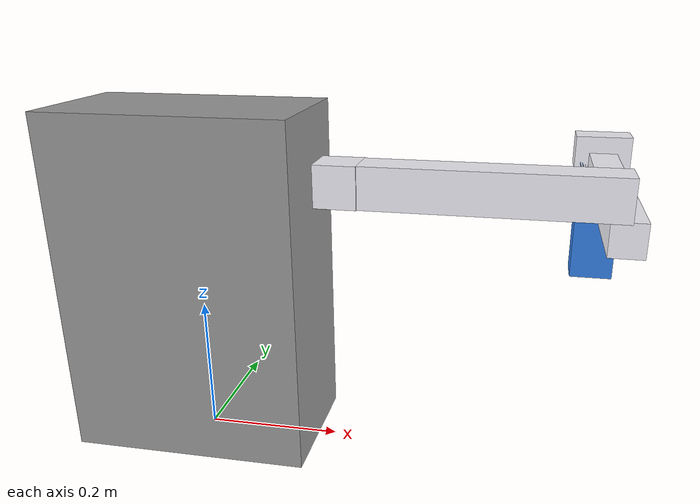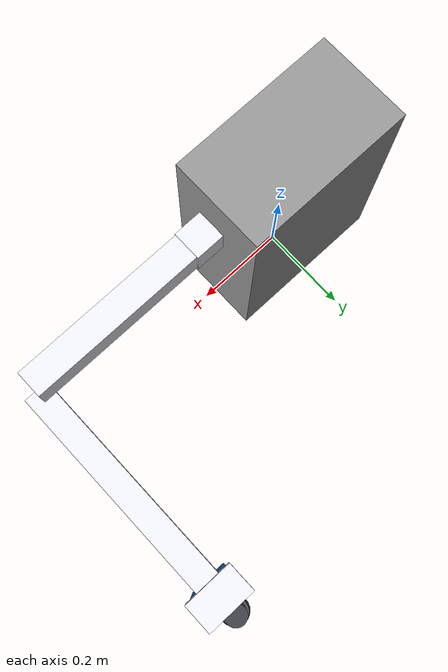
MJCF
<mujoco model="single_side_arm_mocap">
    <compiler angle="radian" autolimits="true" />

    <option timestep="0.002" integrator="RK4" />

    <default>
        <joint damping="0.5" armature="0.1" />
        <geom contype="1" conaffinity="1" friction="1 0.5 0.005" />
    </default>

    <asset>
        <material name="white" rgba="0.95 0.95 0.98 1" />
        <material name="gray" rgba="0.6 0.6 0.6 1" />
        <material name="dark" rgba="0.25 0.25 0.28 1" />
        <material name="blue" rgba="0.2 0.5 0.9 1" />
        <material name="rubber" rgba="0.1 0.1 0.1 0.9" />
    </asset>

    <worldbody>
        <!-- Base/Trunk (fixed) -->
        <body name="trunk" pos="0 0 0">
            <geom name="trunk_geom" size="0.175 0.1 0.25" pos="0 0 0.25" type="box" material="gray" />
            <geom name="stub_geom" size="0.03 0.03 0.03" pos="0.215 0 0.4" type="box"
                material="white" />

            <!-- Link 1 (rotates around Z-axis) -->
            <body name="link1_x" pos="0.245 0 0.4">
                <inertial pos="0.1791 0 0" mass="1.2" diaginertia="0.0131907 0.0131332 0.0006625" />
                <joint name="joint1" type="hinge" pos="0 0 0" axis="0 0 1" range="-1.5708 1.5708"
                    damping="1.0" />
                <geom name="link1_geom" size="0.1791 0.0275 0.03" pos="0.1791 0 0" type="box"
                    material="white" />

                <!-- Link 2 (rotates around Z-axis) -->
                <body name="link2_y" pos="0.3582 0 -0.06">
                    <inertial pos="0 0.2357 0" mass="1.5"
                        diaginertia="0.028089745 0.028089745 0.000625" />
                    <joint name="joint2" type="hinge" pos="0 0 0" axis="0 0 1"
                        range="-1.5708 1.5708"
                        damping="1.0" />
                    <geom name="link2_geom" size="0.025 0.2357 0.025" pos="0 0.2357 0" type="box"
                        material="white" />

                    <!-- Rail frame (fixed) -->
                    <geom name="rail_frame_geom" size="0.04 0.03 0.12" pos="0 0.4714 -0.1"
                        type="box"
                        material="blue" />

                    <!-- Rail slider (prismatic joint) -->
                    <body name="rail_slider" pos="0 0.4714 0.025">
                        <inertial pos="0 0 0" mass="0.9" diaginertia="0.00054 0.00102 0.00102" />
                        <joint name="joint3_slide" type="slide" pos="0 0 0" axis="0 0 -1"
                            range="-0.025 0.215"
                            damping="5.0" />
                        <geom name="slider_geom" size="0.05 0.03 0.03" type="box" material="white" />

                        <!-- Spindle (fixed) -->
                        <body name="spindle_link" pos="0 0.04 0">
                            <inertial pos="0 0 -0.04" mass="0.4"
                                diaginertia="0.000253333 0.000253333 0.00008" />
                            <geom name="spindle_geom" size="0.02 0.04" pos="0 0 -0.04"
                                type="cylinder"
                                material="dark" />

                            <!-- 吸盘部分 -->
                            <body name="suction_cup" pos="0 0 -0.08">
                                <inertial pos="0 0 -0.02" mass="0.1"
                                    diaginertia="0.0000358333 0.0000358333 0.000045" />

                                <!-- 1. 吸盘主体 - 金属外壳 -->
                                <geom name="suction_body" type="cylinder"
                                    size="0.025 0.015"
                                    pos="0 0 -0.015"
                                    rgba="0.3 0.3 0.35 1"
                                    mass="0.05"
                                    friction="1.0 0.5 0.005" />

                                <!-- 2. 吸盘橡胶圈 - 接触面 -->
                                <geom name="suction_rim" type="cylinder"
                                    size="0.028 0.003"
                                    pos="0 0 -0.033"
                                    material="rubber"
                                    mass="0.02"
                                    friction="4.0 1.0 0.01"
                                    condim="6"
                                    solref="0.01 1.0"
                                    solimp="0.95 0.99 0.001"
                                    priority="1" />

                                <!-- 3. 吸盘中心吸附点 -->
                                <site name="suction_center"
                                    pos="0 0 -0.036"
                                    size="0.003"
                                    type="sphere"
                                    rgba="1 0 0 0.6" />

                                <!-- 4. 末端执行器标记 - 用于mocap控制 -->
                                <site name="ee_center_site"
                                    pos="0 0 -0.036"
                                    size="0.008"
                                    type="sphere"
                                    rgba="0 1 0 0.5" />
                            </body>
                        </body>
                    </body>
                </body>
            </body>
        </body>

        <!-- Mocap body for end-effector control -->
        <body name="arm_mocap" mocap="true" pos="0.6032 0.5114 0.18">
            <!-- Mocap visualization geom - set to invisible or very small -->
            <geom name="mocap_geom" type="box" size="0.001 0.001 0.001" rgba="0 1 0 0" contype="0"
                conaffinity="0" />
        </body>

    </worldbody>

    <actuator>
        <!-- Position servos for the joints -->
        <position name="actuator_joint1" joint="joint1" kp="100" ctrlrange="-1.5708 1.5708"
            forcerange="-60 60" />
        <position name="actuator_joint2" joint="joint2" kp="100" ctrlrange="-1.5708 1.5708"
            forcerange="-60 60" />
        <position name="actuator_joint3" joint="joint3_slide" kp="500" ctrlrange="-0.025 0.215"
            forcerange="-400 400" />
    </actuator>

    <equality>
        <!-- Weld constraint to connect mocap body to end-effector -->
        <weld name="mocap_weld" body1="arm_mocap" body2="suction_cup" solref="0.02 1"
            solimp="0.9 0.95 0.001" active="true" />
    </equality>

    <sensor>
        <!-- Joint position sensors -->
        <jointpos name="joint1_pos" joint="joint1" />
        <jointpos name="joint2_pos" joint="joint2" />
        <jointpos name="joint3_pos" joint="joint3_slide" />

        <!-- Joint velocity sensors -->
        <jointvel name="joint1_vel" joint="joint1" />
        <jointvel name="joint2_vel" joint="joint2" />
        <jointvel name="joint3_vel" joint="joint3_slide" />

        <!-- End effector position sensor -->
        <framepos name="ee_pos" objtype="site" objname="ee_center_site" />

        <!-- Suction center position sensor -->
        <framepos name="suction_center_pos" objtype="site" objname="suction_center" />
    </sensor>

</mujoco>
